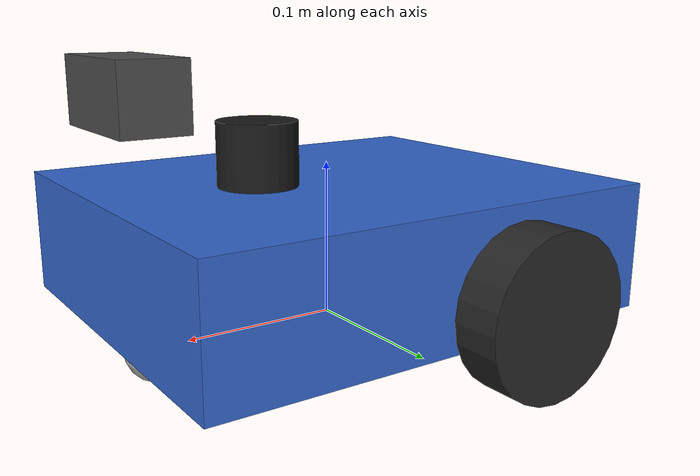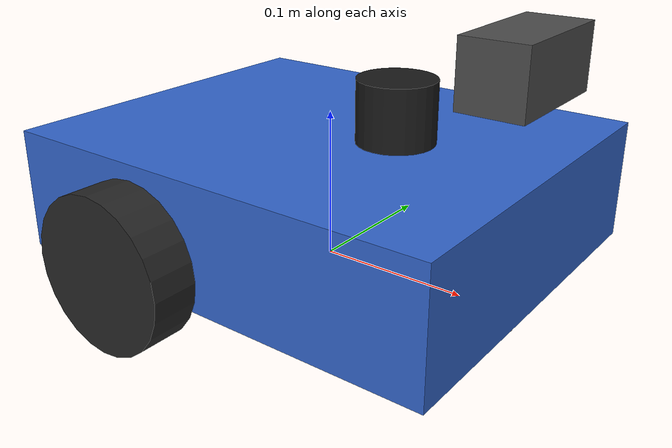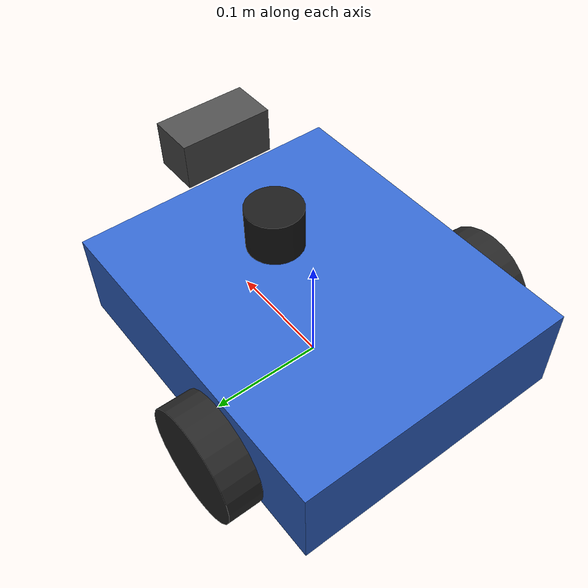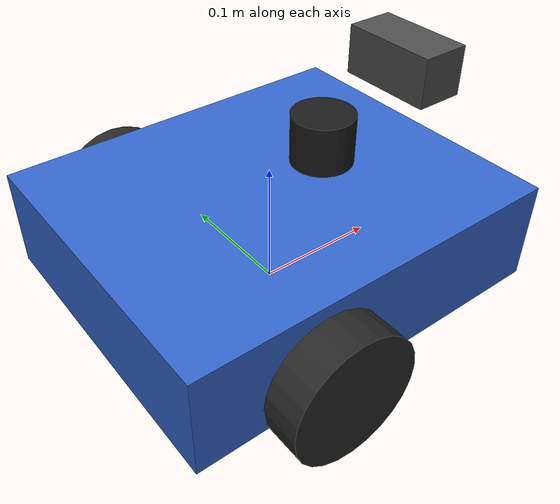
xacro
<?xml version="1.0"?>
<robot xmlns:xacro="http://www.ros.org/wiki/xacro" name="vlm_bot">

  <xacro:property name="chassis_length" value="0.30"/>
  <xacro:property name="chassis_width"  value="0.25"/>
  <xacro:property name="chassis_height" value="0.08"/>
  <xacro:property name="chassis_mass"   value="1.5"/>

  <xacro:property name="wheel_radius"   value="0.05"/>
  <xacro:property name="wheel_width"    value="0.03"/>
  <xacro:property name="wheel_mass"     value="0.1"/>
  <xacro:property name="wheel_offset_y" value="0.14"/>
  <xacro:property name="wheel_offset_z" value="-0.02"/>

  <xacro:property name="caster_radius"  value="0.02"/>
  <xacro:property name="caster_mass"    value="0.05"/>

  <xacro:property name="lidar_radius"   value="0.025"/>
  <xacro:property name="lidar_height"   value="0.04"/>
  <xacro:property name="lidar_mass"     value="0.1"/>

  <xacro:property name="camera_size"    value="0.04"/>
  <xacro:property name="camera_mass"    value="0.05"/>

  <xacro:macro name="box_inertia" params="m l w h">
    <inertial>
      <mass value="${m}"/>
      <inertia
        ixx="${m*(w*w+h*h)/12}" ixy="0" ixz="0"
        iyy="${m*(l*l+h*h)/12}" iyz="0"
        izz="${m*(l*l+w*w)/12}"/>
    </inertial>
  </xacro:macro>

  <xacro:macro name="cylinder_inertia" params="m r h">
    <inertial>
      <mass value="${m}"/>
      <inertia
        ixx="${m*(3*r*r+h*h)/12}" ixy="0" ixz="0"
        iyy="${m*(3*r*r+h*h)/12}" iyz="0"
        izz="${m*r*r/2}"/>
    </inertial>
  </xacro:macro>

  <xacro:macro name="sphere_inertia" params="m r">
    <inertial>
      <mass value="${m}"/>
      <inertia
        ixx="${2*m*r*r/5}" ixy="0" ixz="0"
        iyy="${2*m*r*r/5}" iyz="0"
        izz="${2*m*r*r/5}"/>
    </inertial>
  </xacro:macro>

  <link name="base_footprint"/>

  <joint name="base_footprint_joint" type="fixed">
    <parent link="base_footprint"/>
    <child  link="base_link"/>
    <origin xyz="0 0 ${wheel_radius}" rpy="0 0 0"/>
  </joint>

  <link name="base_link">
    <visual>
      <geometry>
        <box size="${chassis_length} ${chassis_width} ${chassis_height}"/>
      </geometry>
      <material name="blue">
        <color rgba="0.2 0.4 0.8 1.0"/>
      </material>
    </visual>
    <collision>
      <geometry>
        <box size="${chassis_length} ${chassis_width} ${chassis_height}"/>
      </geometry>
    </collision>
    <xacro:box_inertia m="${chassis_mass}"
      l="${chassis_length}" w="${chassis_width}" h="${chassis_height}"/>
  </link>

  <xacro:macro name="wheel" params="name y_reflect">
    <link name="${name}_wheel">
      <visual>
        <origin xyz="0 0 0" rpy="${pi/2} 0 0"/>
        <geometry>
          <cylinder radius="${wheel_radius}" length="${wheel_width}"/>
        </geometry>
        <material name="dark_grey">
          <color rgba="0.15 0.15 0.15 1.0"/>
        </material>
      </visual>
      <collision>
        <origin xyz="0 0 0" rpy="${pi/2} 0 0"/>
        <geometry>
          <cylinder radius="${wheel_radius}" length="${wheel_width}"/>
        </geometry>
      </collision>
      <xacro:cylinder_inertia m="${wheel_mass}"
        r="${wheel_radius}" h="${wheel_width}"/>
    </link>

    <joint name="${name}_wheel_joint" type="continuous">
      <parent link="base_link"/>
      <child  link="${name}_wheel"/>
      <origin xyz="-0.05 ${y_reflect * wheel_offset_y} ${wheel_offset_z}"
              rpy="0 0 0"/>
      <axis xyz="0 1 0"/>
    </joint>
  </xacro:macro>

  <xacro:wheel name="left"  y_reflect="1"/>
  <xacro:wheel name="right" y_reflect="-1"/>

  <link name="caster_wheel">
    <visual>
      <geometry>
        <sphere radius="${caster_radius}"/>
      </geometry>
      <material name="light_grey">
        <color rgba="0.7 0.7 0.7 1.0"/>
      </material>
    </visual>
    <collision>
      <geometry>
        <sphere radius="${caster_radius}"/>
      </geometry>
    </collision>
    <xacro:sphere_inertia m="${caster_mass}" r="${caster_radius}"/>
  </link>

  <joint name="caster_wheel_joint" type="fixed">
    <parent link="base_link"/>
    <child  link="caster_wheel"/>
    <origin xyz="${chassis_length/2 - 0.03} 0 ${-chassis_height/2 - caster_radius + 0.01}"
            rpy="0 0 0"/>
    <dynamics damping="0.0" friction="0.0"/>
  </joint>

  <gazebo reference="caster_wheel">
    <mu1>0.0</mu1>
    <mu2>0.0</mu2>
    <kp>1000000.0</kp>
    <kd>100.0</kd>
  </gazebo>

  <link name="lidar_link">
    <visual>
      <geometry>
        <cylinder radius="${lidar_radius}" length="${lidar_height}"/>
      </geometry>
      <material name="black">
        <color rgba="0.1 0.1 0.1 1.0"/>
      </material>
    </visual>
    <collision>
      <geometry>
        <cylinder radius="${lidar_radius}" length="${lidar_height}"/>
      </geometry>
    </collision>
    <xacro:cylinder_inertia m="${lidar_mass}"
      r="${lidar_radius}" h="${lidar_height}"/>
  </link>

  <joint name="lidar_joint" type="fixed">
    <parent link="base_link"/>
    <child  link="lidar_link"/>
    <origin xyz="0.05 0 ${chassis_height/2 + lidar_height/2}" rpy="0 0 0"/>
  </joint>

  <!-- ═══ RGB-D CAMERA (front-facing, mounted above the lidar) ═══ -->
  <link name="camera_link">
    <visual>
      <geometry>
        <box size="${camera_size} ${camera_size*2} ${camera_size}"/>
      </geometry>
      <material name="camera_grey">
        <color rgba="0.3 0.3 0.3 1.0"/>
      </material>
    </visual>
    <collision>
      <geometry>
        <box size="${camera_size} ${camera_size*2} ${camera_size}"/>
      </geometry>
    </collision>
    <xacro:box_inertia m="${camera_mass}"
      l="${camera_size}" w="${camera_size*2}" h="${camera_size}"/>
  </link>

  <joint name="camera_joint" type="fixed">
    <parent link="base_link"/>
    <child  link="camera_link"/>
    <!-- Mounted at the front edge of the chassis, above the lidar base -->
    <origin xyz="${chassis_length/2 - 0.02} 0 ${chassis_height/2 + lidar_height + 0.02}"
            rpy="0 0 0"/>
  </joint>

  <link name="camera_optical_link"/>

  <joint name="camera_optical_joint" type="fixed">
    <parent link="camera_link"/>
    <child  link="camera_optical_link"/>
    <origin xyz="0 0 0" rpy="-1.5708 0 -1.5708"/>
  </joint>

  <gazebo reference="base_link">
    <material>Gazebo/Blue</material>
  </gazebo>
  <gazebo reference="left_wheel">
    <material>Gazebo/DarkGrey</material>
    <mu1>1.0</mu1>
    <mu2>1.0</mu2>
  </gazebo>
  <gazebo reference="right_wheel">
    <material>Gazebo/DarkGrey</material>
    <mu1>1.0</mu1>
    <mu2>1.0</mu2>
  </gazebo>
  <gazebo reference="lidar_link">
    <material>Gazebo/Black</material>
  </gazebo>
  <gazebo reference="camera_link">
    <material>Gazebo/Grey</material>
  </gazebo>

  <!-- ═══ DIFFERENTIAL DRIVE ═══ -->
  <gazebo>
    <plugin name="diff_drive" filename="libgazebo_ros_diff_drive.so">
      <left_joint>left_wheel_joint</left_joint>
      <right_joint>right_wheel_joint</right_joint>
      <wheel_separation>0.3</wheel_separation>
      <wheel_diameter>0.1</wheel_diameter>
      <max_wheel_torque>20</max_wheel_torque>
      <max_wheel_acceleration>1.0</max_wheel_acceleration>
      <publish_odom>true</publish_odom>
      <publish_odom_tf>true</publish_odom_tf>
      <publish_wheel_tf>false</publish_wheel_tf>
      <odometry_frame>odom</odometry_frame>
      <robot_base_frame>base_footprint</robot_base_frame>
    </plugin>
  </gazebo>

  <!-- ═══ 2D LIDAR ═══ -->
  <gazebo reference="lidar_link">
    <sensor type="ray" name="lidar">
      <always_on>true</always_on>
      <update_rate>10</update_rate>
      <pose>0 0 0 0 0 0</pose>
      <visualize>false</visualize>
      <ray>
        <scan>
          <horizontal>
            <samples>360</samples>
            <resolution>1</resolution>
            <min_angle>-3.14159</min_angle>
            <max_angle>3.14159</max_angle>
          </horizontal>
        </scan>
        <range>
          <min>0.12</min>
          <max>10.0</max>
          <resolution>0.01</resolution>
        </range>
        <noise>
          <type>gaussian</type>
          <mean>0.0</mean>
          <stddev>0.01</stddev>
        </noise>
      </ray>
      <plugin name="lidar_plugin" filename="libgazebo_ros_ray_sensor.so">
        <ros>
          <remapping>~/out:=scan</remapping>
        </ros>
        <output_type>sensor_msgs/LaserScan</output_type>
        <frame_name>lidar_link</frame_name>
      </plugin>
    </sensor>
  </gazebo>

  <gazebo reference="camera_link">
    <sensor type="depth" name="rgbd_camera">
      <always_on>true</always_on>
      <update_rate>15</update_rate>
      <visualize>false</visualize>
      <camera name="rgbd">
        <horizontal_fov>1.5708</horizontal_fov>
        <image>
          <width>640</width>
          <height>480</height>
          <format>R8G8B8</format>
        </image>
        <clip>
          <near>0.1</near>
          <far>10.0</far>
        </clip>
        <noise>
          <type>gaussian</type>
          <mean>0.0</mean>
          <stddev>0.005</stddev>
        </noise>
      </camera>
      <plugin name="camera_plugin" filename="libgazebo_ros_camera.so">
        <ros>
          <namespace>/</namespace>
          <remapping>rgbd_camera/image_raw:=camera/image_raw</remapping>
          <remapping>rgbd_camera/depth/image_raw:=camera/depth/image_raw</remapping>
          <remapping>rgbd_camera/camera_info:=camera/camera_info</remapping>
          <remapping>rgbd_camera/depth/camera_info:=camera/depth/camera_info</remapping>
          <remapping>rgbd_camera/points:=camera/points</remapping>
        </ros>
        <frame_name>camera_optical_link</frame_name>
        <min_depth>0.1</min_depth>
        <max_depth>10.0</max_depth>
      </plugin>
    </sensor>
  </gazebo>

</robot>
